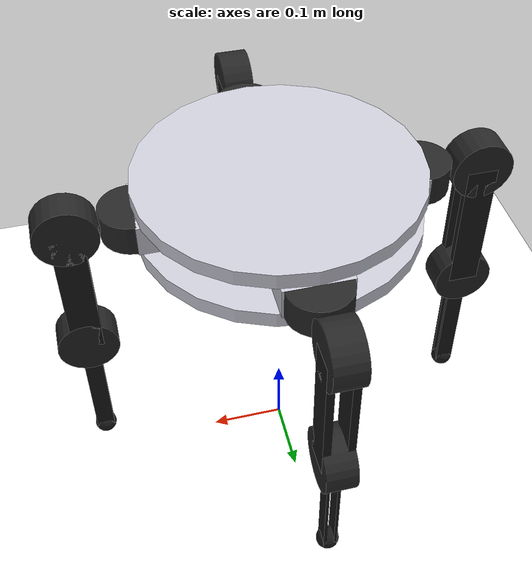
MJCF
<mujoco model="Tarantulin">
  <compiler angle="degree" inertiafromgeom="true"/>
  <option timestep="0.002" gravity="0 0 -9.81" iterations="50"/>

  <asset>
    <texture name="white_sky" type="skybox" builtin="flat"
             rgb1="1 1 1" rgb2="1 1 1"
             width="512" height="512"/>
  </asset>

  <!-- REVISAR-->

  <default>
    <joint damping="0.1" armature="0.02" limited="true"/>
    <geom density="700" friction="1.0 0.1 0.1" contype="1" conaffinity="1"
          solref="0.003 1" solimp="0.9 0.95 0.01"/>
    <motor ctrlrange="-1 1" gear="50"/>
  </default>

  <worldbody>
    <geom name="sueloMundo" type="plane" pos="0 0 0" size="5 5 0.1" rgba="1 1 1 1"/>

    <body name="TARANTULIN" pos="0 0 0.431">
      <joint name="E_00" type="free"/>

      <geom name="planchaBaja" type="cylinder" size="0.18 0.01" pos="0 0 -0.03" mass="0.3" rgba="0.8 0.8 0.85 1"/>
      <geom name="planchaAlta" type="cylinder" size="0.18 0.01" pos="0 0 0.03" mass="0.3" rgba="0.8 0.8 0.85 1"/>

      <geom name="E_10" type="box" size="0.025 0.0425 0.020" pos="0.155 0 0" mass="0.0488" rgba="0.8 0.8 0.85 1"/>
      <geom name="E_20" type="box" size="0.0425 0.025 0.020" pos="0 0.155 0" mass="0.0488" rgba="0.8 0.8 0.85 1"/>
      <geom name="E_30" type="box" size="0.025 0.0425 0.020" pos="-0.155 0 0" mass="0.0488" rgba="0.8 0.8 0.85 1"/>
      <geom name="E_40" type="box" size="0.0425 0.025 0.020" pos="0 -0.155 0" mass="0.0488" rgba="0.8 0.8 0.85 1"/>

      <!-- PATA 1 -->
      <body name="Pata1" pos="0.18 0 0">

         <!-- ESLABÓN 1  -->
        <joint name="ID_11_q1" type="hinge" axis="0 0 1" range="-100 100"/>
        <geom name="ID_11_geom" type="cylinder" size="0.04 0.02" mass="0.395" rgba="0.15 0.15 0.15 1"/>
        <geom name="E_11" type="capsule" fromto="0 0 0  0.08 0 0" size="0.01" mass="0.0955" rgba="0.1 0.1 0.1 1"/>

          <!-- ESLABÓN 2  -->
        <body name="E_12" pos="0.08 0 0">
          <joint name="ID_12_q2" type="hinge" axis="0 -1 0" range="-100 100" ref="-90"/>
          <geom name="ID_12_geom" type="cylinder" size="0.04 0.02" mass="0.395" rgba="0.15 0.15 0.15 1" quat="0.7071 0.7071 0 0"/>
          <geom name="E_12_A" type="box" size="0.02 0.005 0.094" pos="0 0.015 -0.094" mass="0.05445" rgba="0.1 0.1 0.1 1"/>
          <geom name="E_12_B" type="box" size="0.02 0.005 0.094" pos="0 -0.015 -0.094" mass="0.05445" rgba="0.1 0.1 0.1 1"/>

            <!-- ESLABÓN 3 -->
          <body name="E_13" pos="0 0 -0.188">
            <joint name="ID_13_q3" type="hinge" axis="0 -1 0" range="-110 110"/>
            <geom name="E_13_geom" type="cylinder" size="0.04 0.02" mass="0.395" rgba="0.15 0.15 0.15 1" quat="0.7071 0.7071 0 0"/>
            <geom name="E_13_A" type="box" pos="0 0.007 -0.0925" size="0.012 0.002 0.0925" mass="0.0713" rgba="0.1 0.1 0.1 1"/>
            <geom name="E_13_B" type="box" pos="0 -0.007 -0.0925" size="0.012 0.002 0.0925" mass="0.0713" rgba="0.1 0.1 0.1 1"/>

            <!-- Efector final -->
            <body name="E_14" pos="0 0 -0.185">
              <geom name="E_14_geom" type="sphere" size="0.015" mass="0.0127" rgba="0.1 0.1 0.1 1" friction="2 0.1 0.1"/>
            </body>
          </body>
        </body>
      </body>

      <!-- PATA 2 -->
      <body name="Pata2" pos="0 0.18 0">
        <joint name="ID_21_q1" type="hinge" axis="0 0 1" range="-100 100"/>
        <geom name="ID_21_geom" type="cylinder" size="0.04 0.02" mass="0.395" rgba="0.15 0.15 0.15 1"/>

        <geom name="E_21" type="capsule" fromto="0 0 0  0 0.08 0" size="0.01" mass="0.0955" rgba="0.1 0.1 0.1 1"/>

        <body name="E_22" pos="0 0.08 0">
          <joint name="ID_22_q2" type="hinge" axis="1 0 0" range="-100 100" ref="-90"/>
          <geom name="ID_22_geom" type="cylinder" size="0.04 0.02" mass="0.395" rgba="0.15 0.15 0.15 1" quat="0.7071 0 0.7071 0"/>

          <geom name="E_22_A" type="box" size="0.005 0.02 0.094" pos="0.015 0 -0.094" mass="0.05445" rgba="0.1 0.1 0.1 1"/>
          <geom name="E_22_B" type="box" size="0.005 0.02 0.094" pos="-0.015 0 -0.094" mass="0.05445" rgba="0.1 0.1 0.1 1"/>

          <body name="E_23" pos="0 0 -0.188">
            <joint name="ID_23_q3" type="hinge" axis="1 0 0" range="-110 110"/>
            <geom name="E_23_geom" type="cylinder" size="0.04 0.02" mass="0.395" rgba="0.15 0.15 0.15 1" quat="0.7071 0 0.7071 0"/>

            <geom name="E_23_A" type="box" pos="0.007 0 -0.0925" size="0.002 0.012 0.0925" mass="0.0713" rgba="0.1 0.1 0.1 1"/>
            <geom name="E_23_B" type="box" pos="-0.007 0 -0.0925" size="0.002 0.012 0.0925" mass="0.0713" rgba="0.1 0.1 0.1 1"/>

            <body name="E_24" pos="0 0 -0.185">
              <geom name="E_24_geom" type="sphere" size="0.015" mass="0.0127" rgba="0.1 0.1 0.1 1" friction="2 0.1 0.1"/>
            </body>
          </body>
        </body>
      </body>

      <!-- PATA 3 -->
      <body name="Pata3" pos="-0.18 0 0">
        <joint name="ID_31_q1" type="hinge" axis="0 0 1" range="-100 100"/>
        <geom name="ID_31_geom" type="cylinder" size="0.04 0.02" mass="0.395" rgba="0.15 0.15 0.15 1"/>
        <geom name="E_31" type="capsule" fromto="0 0 0  -0.08 0 0" size="0.01" mass="0.0955" rgba="0.1 0.1 0.1 1"/>

        <body name="E_32" pos="-0.08 0 0">
          <joint name="ID_32_q2" type="hinge" axis="0 1 0" range="-100 100" ref="-90"/>
          <geom name="ID_32_geom" type="cylinder" size="0.04 0.02" mass="0.395" rgba="0.15 0.15 0.15 1" quat="0.7071 -0.7071 0 0"/>

          <!-- ESLABÓN 2 ROTADO 90° -->
          <geom name="E_32_plate1" type="box" size="0.02 0.005 0.094" pos="0 0.015 -0.094" mass="0.05445" rgba="0.1 0.1 0.1 1"/>
          <geom name="E_32_plate2" type="box" size="0.02 0.005 0.094" pos="0 -0.015 -0.094" mass="0.05445" rgba="0.1 0.1 0.1 1"/>

          <body name="E_33" pos="0 0 -0.188">
            <joint name="ID_33_q3" type="hinge" axis="0 1 0" range="-110 110"/>
            <geom name="E_33_geom" type="cylinder" size="0.04 0.02" mass="0.395" rgba="0.15 0.15 0.15 1" quat="0.7071 -0.7071 0 0"/>

            <!-- ESLABÓN 3 ROTADO 90° -->
            <geom name="E_33_plate1" type="box" pos="0 0.007 -0.0925" size="0.012 0.002 0.0925" mass="0.0713" rgba="0.1 0.1 0.1 1"/>
            <geom name="E_33_plate2" type="box" pos="0 -0.007 -0.0925" size="0.012 0.002 0.0925" mass="0.0713" rgba="0.1 0.1 0.1 1"/>

            <body name="E_34" pos="0 0 -0.185">
              <geom name="E_34_geom" type="sphere" size="0.015" mass="0.0127" rgba="0.1 0.1 0.1 1" friction="2 0.1 0.1"/>
            </body>
          </body>
        </body>
      </body>

      <!-- PATA 4 -->
      <body name="Pata4" pos="0 -0.18 0">
        <joint name="ID_41_q1" type="hinge" axis="0 0 1" range="-100 100"/>
        <geom name="ID_41_geom" type="cylinder" size="0.04 0.02" mass="0.395" rgba="0.15 0.15 0.15 1"/>
        <geom name="E_41" type="capsule" fromto="0 0 0  0 -0.08 0" size="0.01" mass="0.0955" rgba="0.1 0.1 0.1 1"/>

        <body name="E_42" pos="0 -0.08 0">
          <joint name="ID_42_q2" type="hinge" axis="-1 0 0" range="-100 100" ref="-90"/>
          <geom name="ID_42_geom" type="cylinder" size="0.04 0.02" mass="0.395" rgba="0.15 0.15 0.15 1" quat="0.7071 0 -0.7071 0"/>

          <geom name="E_42_A" type="box" size="0.005 0.02 0.094" pos="0.015 0 -0.094" mass="0.05445" rgba="0.1 0.1 0.1 1"/>
          <geom name="E_42_B" type="box" size="0.005 0.02 0.094" pos="-0.015 0 -0.094" mass="0.05445" rgba="0.1 0.1 0.1 1"/>

          <body name="E_43" pos="0 0 -0.188">
            <joint name="ID_43_q3" type="hinge" axis="-1 0 0" range="-110 110"/>
            <geom name="E_43_geom" type="cylinder" size="0.04 0.02" mass="0.395" rgba="0.15 0.15 0.15 1" quat="0.7071 0 -0.7071 0"/>

            <geom name="E_43_plate1" type="box" pos="0.007 0 -0.0925" size="0.002 0.012 0.0925" mass="0.0713" rgba="0.1 0.1 0.1 1"/>
            <geom name="E_43_plate2" type="box" pos="-0.007 0 -0.0925" size="0.002 0.012 0.0925" mass="0.0713" rgba="0.1 0.1 0.1 1"/>

            <body name="E_44" pos="0 0 -0.185">
              <geom name="E_44_geom" type="sphere" size="0.015" mass="0.0127" rgba="0.1 0.1 0.1 1" friction="2 0.1 0.1"/>
            </body>
          </body>
        </body>
      </body>

    </body>
  </worldbody>

  <actuator>
    <motor name="M_ID11" joint="ID_11_q1"/>
    <motor name="M_ID12" joint="ID_12_q2"/>
    <motor name="M_ID13" joint="ID_13_q3"/>

    <motor name="M_ID21" joint="ID_21_q1"/>
    <motor name="M_ID22" joint="ID_22_q2"/>
    <motor name="M_ID23" joint="ID_23_q3"/>

    <motor name="M_ID31" joint="ID_31_q1"/>
    <motor name="M_ID32" joint="ID_32_q2"/>
    <motor name="M_ID33" joint="ID_33_q3"/>

    <motor name="M_ID41" joint="ID_41_q1"/>
    <motor name="M_ID42" joint="ID_42_q2"/>
    <motor name="M_ID43" joint="ID_43_q3"/>

  </actuator>

  <sensor>
    <jointpos joint="ID_11_q1"/>
    <jointpos joint="ID_12_q2"/>
    <jointpos joint="ID_13_q3"/>

    <jointpos joint="ID_21_q1"/>
    <jointpos joint="ID_22_q2"/>
    <jointpos joint="ID_23_q3"/>

    <jointpos joint="ID_31_q1"/>
    <jointpos joint="ID_32_q2"/>
    <jointpos joint="ID_33_q3"/>

    <jointpos joint="ID_41_q1"/>
    <jointpos joint="ID_42_q2"/>
    <jointpos joint="ID_43_q3"/>
  </sensor>
</mujoco>
